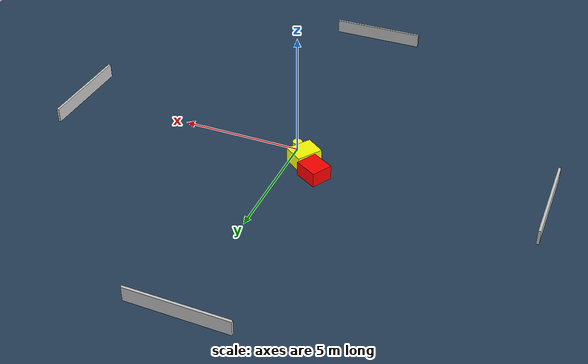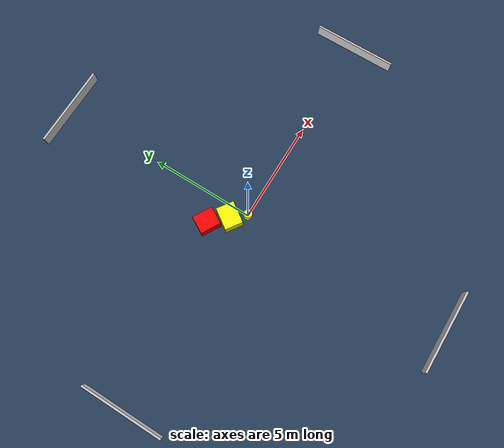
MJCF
<?xml version="1.0" ?>
<mujoco model="generated_environment">
  <option timestep="0.01" integrator="RK4" cone="elliptic"/>
  <default>
    <geom density="1"/>
  </default>
  <asset>
    <texture builtin="gradient" height="3072" name="skybox" rgb1="0.3 0.5 0.7" rgb2="0 0 0" type="skybox" width="512"/>
    <texture builtin="checker" height="300" name="groundplane" rgb1="0.2 0.3 0.4" rgb2="0.1 0.2 0.3" type="2d" width="300"/>
    <material name="groundplane" reflectance="0.2" texrepeat="5 5" texture="groundplane"/>
  </asset>
  <worldbody>
    <light dir="0 0 -1" directional="true" pos="0 0 1.5"/>
    <geom condim="3" friction="0.5 0.005 0.001" material="groundplane" name="floor" pos="0 0 0" size="0 0 0.05" type="plane"/>
    <body name="walls">
      <geom name="wall_1" condim="4" pos="-10.0 0.0 0.3" rgba="0.800000011920929 0.800000011920929 0.800000011920929 1.0" size="0.05 2.0 0.3" type="box"/>
      <geom name="wall_2" condim="4" pos="10.0 0.0 0.3" rgba="0.800000011920929 0.800000011920929 0.800000011920929 1.0" size="0.05 2.0 0.3" type="box"/>
      <geom name="wall_3" condim="4" pos="0.0 -10.0 0.3" rgba="0.800000011920929 0.800000011920929 0.800000011920929 1.0" size="2.0 0.05 0.3" type="box"/>
      <geom name="wall_4" condim="4" pos="0.0 10.0 0.3" rgba="0.800000011920929 0.800000011920929 0.800000011920929 1.0" size="2.0 0.05 0.3" type="box"/>
    </body>
    <body name="robot">
      <joint name="joint_x" type="slide" pos="0 0 0" axis="1 0 0"/>
      <joint name="joint_y" type="slide" pos="0 0 0" axis="0 1 0"/>
      <geom name="robot" type="cylinder" pos="0.0 0.0 0.2" size="0.2 0.2 0.0" mass="5.0" friction="1.0 0.005 0.0001" condim="4" rgba="1.0 1.0 0.0 1.0"/>
    </body>
    <body name="obstacle_1_movable">
      <geom name="obstacle_1_movable" condim="4" pos="-0.5554367645345292 0.6469132944755364 0.3" euler="0 0 235.44040917361195" friction="0.0 0.005 0.001" rgba="1.0 1.0 0.0 1.0" size="0.5383047281751077 0.43078156198862344 0.3" type="box" mass="0.1"/>
      <joint type="free"/>
    </body>
    <body name="obstacle_2_static">
      <geom name="obstacle_2_static" condim="4" pos="-1.2783228182650734 1.4078161328547811 0.3" euler="0 0 60.434614018064025" friction="0.0 0.005 0.001" rgba="1.0 0.0 0.0 1.0" size="0.433663352993606 0.49457297898884883 0.3" type="box"/>
    </body>
  </worldbody>
  <actuator>
    <motor name="actuator_x" joint="joint_x" gear="1" ctrlrange="-1 1"/>
    <motor name="actuator_y" joint="joint_y" gear="1" ctrlrange="-1 1"/>
  </actuator>
</mujoco>
